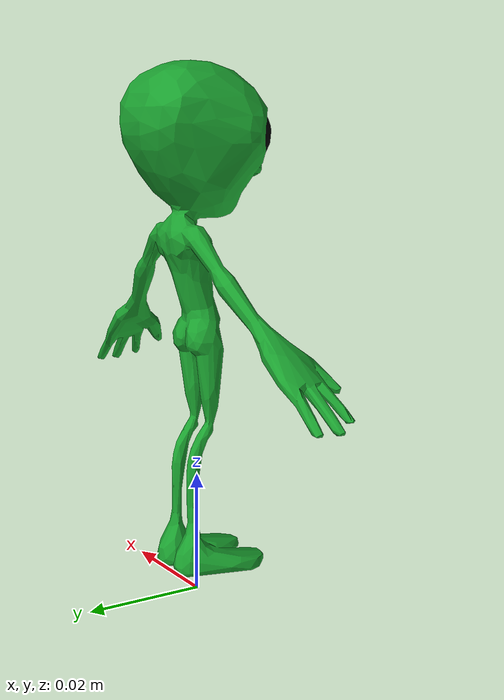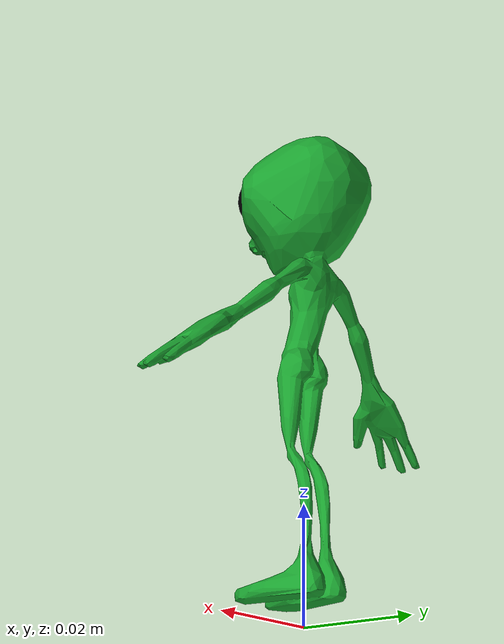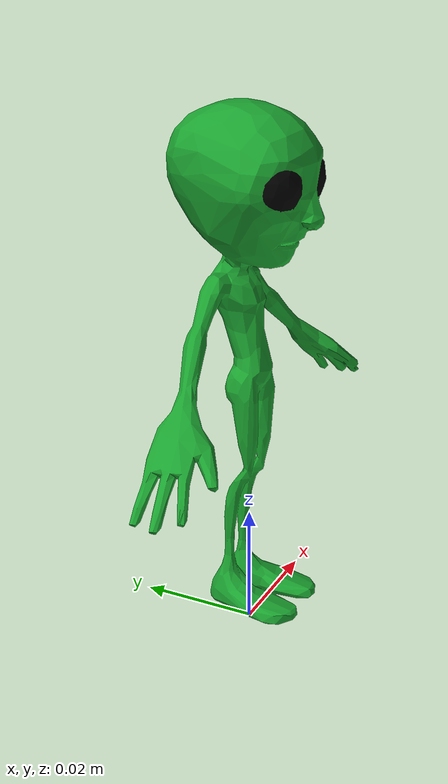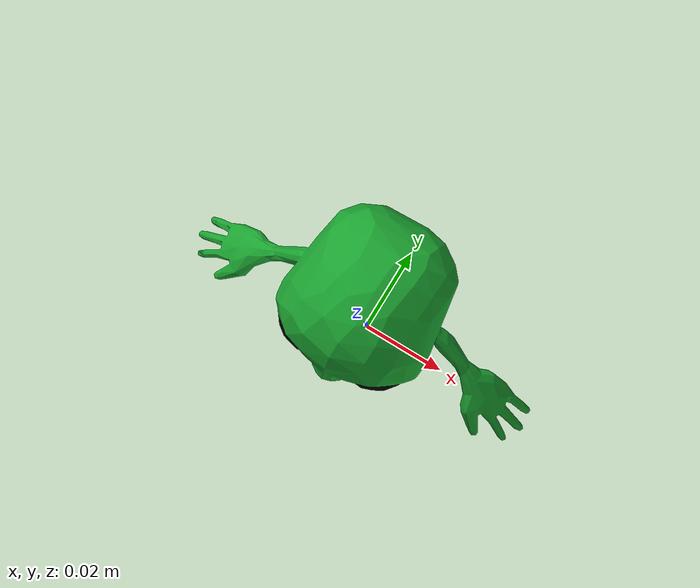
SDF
<?xml version="1.0" encoding="UTF-8"?>
<sdf version="1.4">
   <model name="green-alien">
      <static>true</static>
      <link name="link">
         <collision name="collision">
            <geometry>
               <mesh>
                  <uri>model://green-alien/meshes/green-alien.dae</uri>
                  <scale>0.05 0.05 0.05</scale>
               </mesh>
            </geometry>
         </collision>
         <visual name="visual">
            <geometry>
               <mesh>
                  <uri>model://green-alien/meshes/green-alien.dae</uri>
                  <scale>0.05 0.05 0.05</scale>
               </mesh>
            </geometry>
         </visual>
      </link>
   </model>
</sdf>
